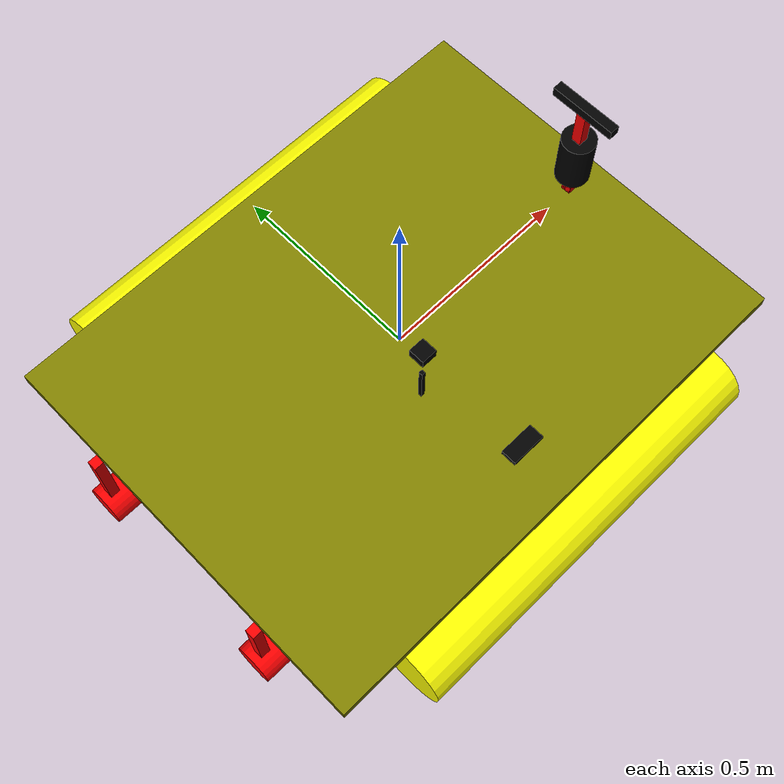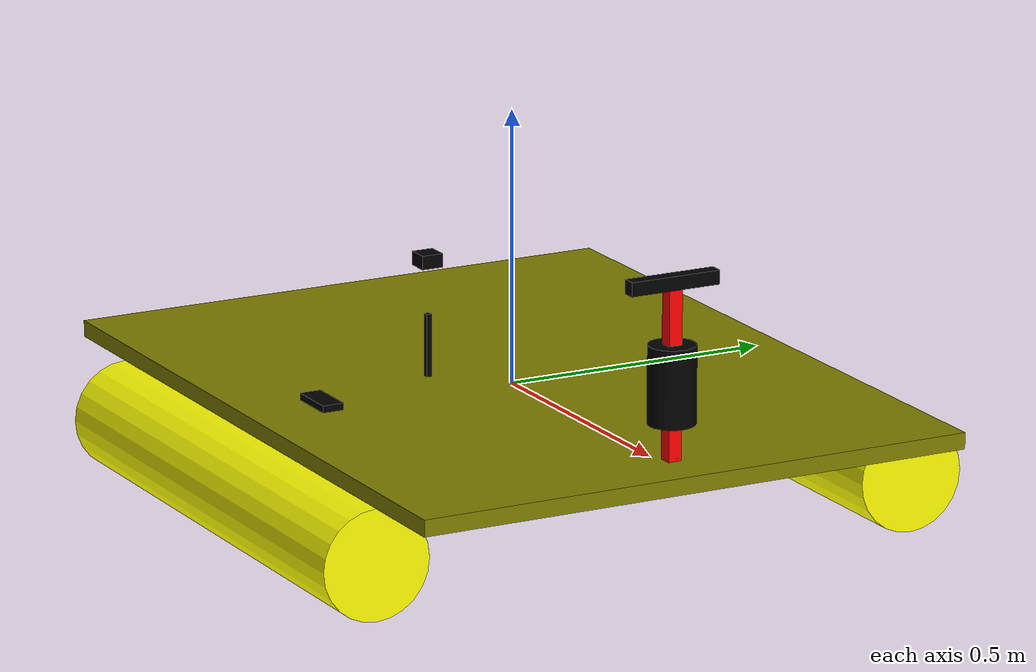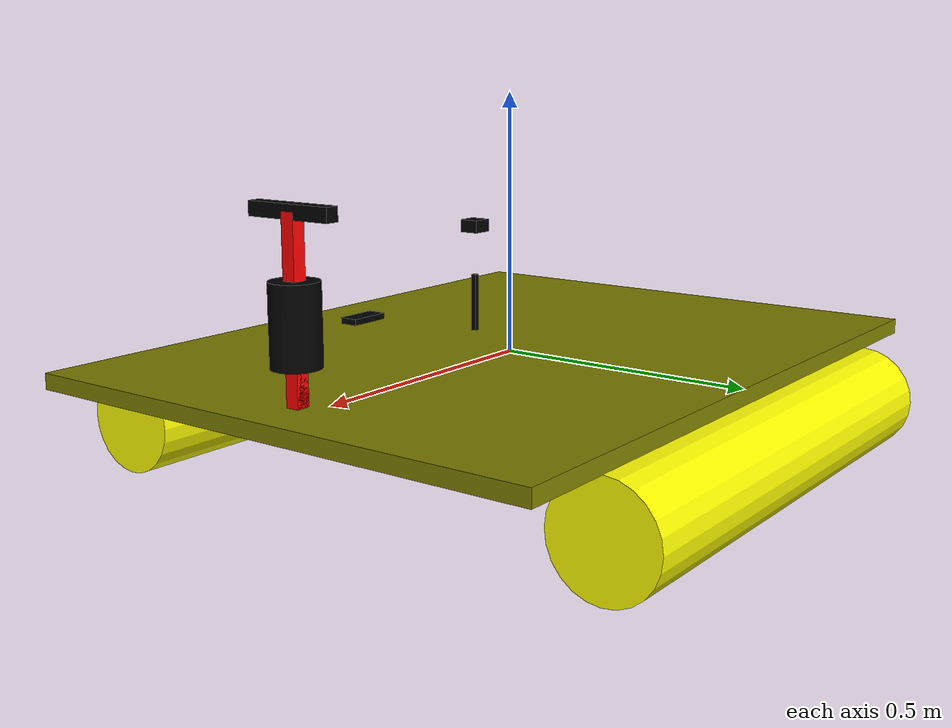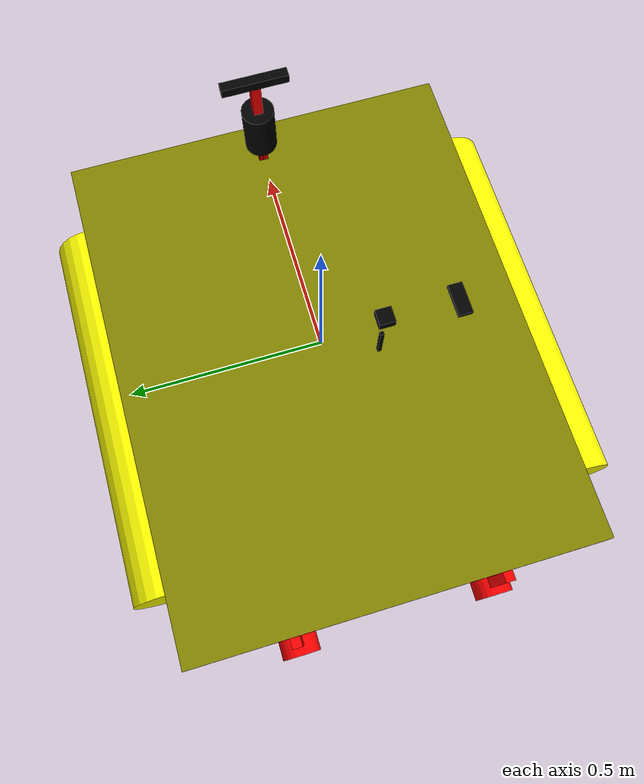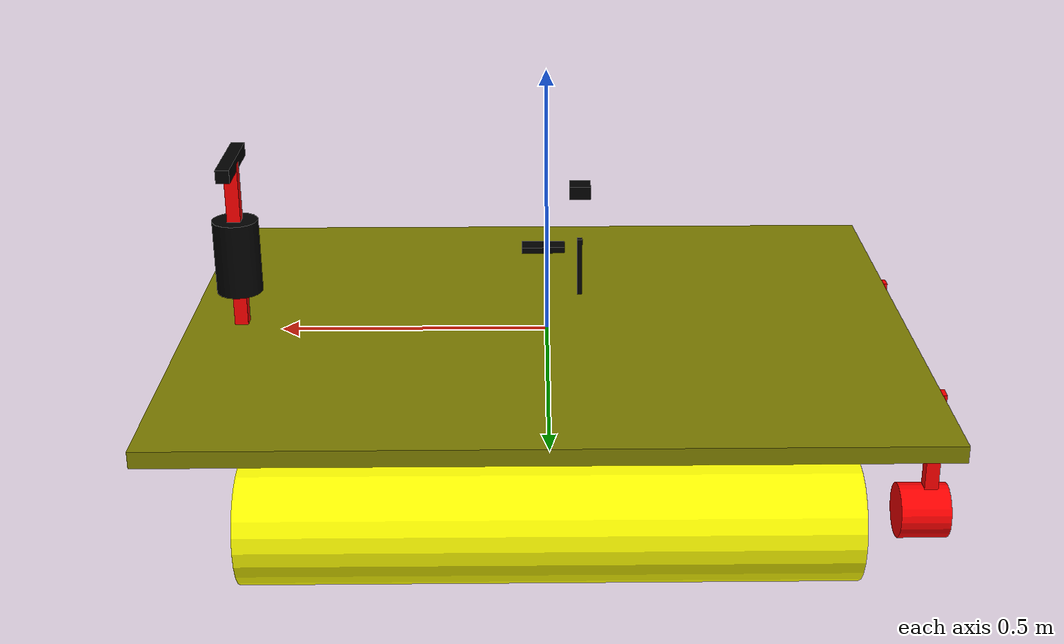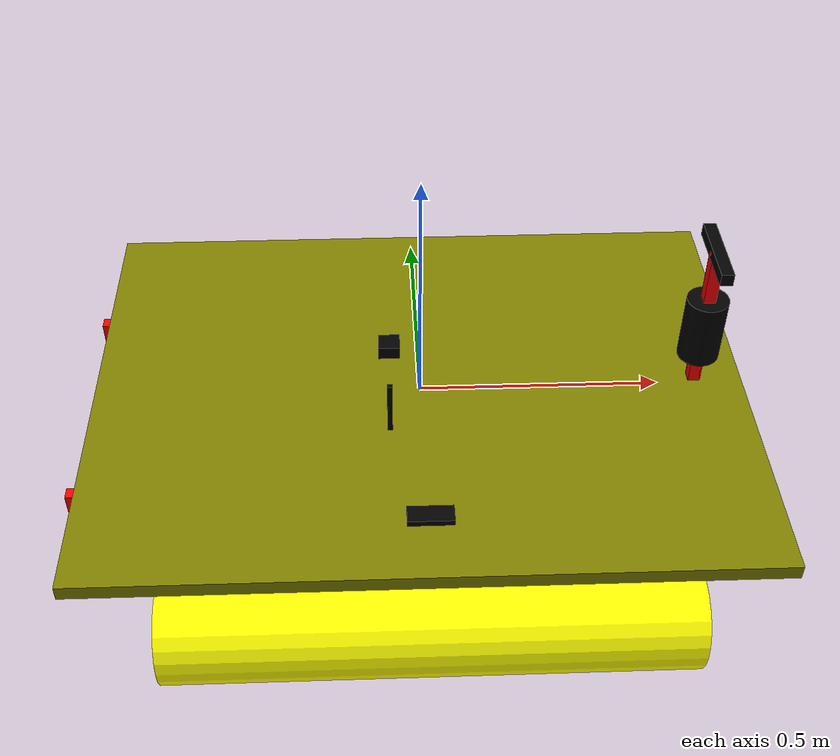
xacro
<?xml version="1.0"?>
<robot xmlns:xacro="http://www.ros.org/wiki/xacro" name="athena">

  <include filename="$(find sim_suite)/urdf/inertia.xacro" />

  <xacro:property name="deck_width" value="1.05" />
  <xacro:property name="deck_length" value="1.35" />
  <xacro:property name="deck_height" value=".03" />
  <xacro:property name="hull_radius" value=".1" />
  <xacro:property name="hull_length" value="1.0" />

  <xacro:property name="camera_stand_height" value=".33" />
  <xacro:property name="lidar_stand_height" value=".15" />

  <xacro:property name="base_to_imu_x" value=".005" />
  <xacro:property name="base_to_imu_y" value="-.38" />

  <xacro:property name="base_to_gps_x" value="-.065" />
  <xacro:property name="base_to_gps_y" value="-.135" />
  <xacro:property name="gps_stand_height" value=".2" />

  <xacro:property name="left_motor_height" value=".25" />
  <xacro:property name="right_motor_height" value=".25" />
  <xacro:property name="motor_depth" value=".05" />
  <xacro:property name="motor_radius" value=".05" />
  <xacro:macro name="solid_box_inertia" params="m h d w">

    <inertia ixx="${(m*(h*h+d*d))/12}" ixy="0" ixz="0"
      iyy="${(m*(w*w+d*d))/12}" iyz="0"
      izz="${(m*(w*w+h*h))/12}"
    />
  </xacro:macro>
  <xacro:macro name="solid_sphere_inertia" params="m r">
    <inertia ixx="${(2*r*r*m)/5}" ixy="0" ixz="0"
      iyy="${(2*r*r*m)/5}" iyz="0"
      izz="${(2*r*r*m)/5}"
    />
  </xacro:macro>

  <xacro:macro name="hollow_sphere_inertia" params="m r">
    <inertia ixx="${(2*r*r*m)/3}" ixy="0" ixz="0"
      iyy="${(2*r*r*m)/3}" iyz="0"
      izz="${(2*r*r*m)/3}"
    />
  </xacro:macro>

  <xacro:macro name="ellipsoid_semi_axes_inertia" params="a b c m r">
    <inertia ixx="${(m*(b*b+c*c))/5}" ixy="0" ixz="0"
      iyy="${(m*(a*a+c*c))/5}" iyz="0"
      izz="${(m*(a*a+b*b))/5}"
    />
  </xacro:macro>

  <xacro:macro name="right_circular_cone_inertia" params="m r h">
    <inertia ixx="${((3*m*(h*h))/5)+((3*m*(r*r))/20)}" ixy="0" ixz="0"
      iyy="${((3*m*(h*h))/5)+((3*m*(r*r))/20)}" iyz="0"
      izz="${(3*m*(r*r))/10}"
    />
  </xacro:macro>

  <!-- Solid cuboid of width w, height h, depth d, and mass m -->
  <!-- yes, axis in solid_cuboid_inertia are changed, w relates to X axis, d to Z axis, and h to Y
  axis -->
  <xacro:macro name="solid_cuboid_inertia" params="m h d w">
    <inertia ixx="${(m*(h*h+d*d))/12}" ixy="0" ixz="0"
      iyy="${(m*(w*w+d*d))/12}" iyz="0"
      izz="${(m*(w*w+h*h))/12}"
    />
  </xacro:macro>

  <!-- Solid cylinder of radius r, height h and mass m -->
  <xacro:macro name="solid_cylinder_inertia" params="m r h">
    <inertia ixx="${m*(3*r*r+h*h)/12}" ixy="0" ixz="0"
      iyy="${m*(3*r*r+h*h)/12}" iyz="0"
      izz="${m*r*r/2}"
    />
  </xacro:macro>

  <!-- Thick-walled cylindrical tube with open ends, of inner radius r1, outer radius r2, length h
  and mass m -->
  <xacro:macro name="thick_walled_cylinder_inertia" params="m r1 r2 h">
    <inertia ixx="${m*((3*(r1*r1+r2*r2))+(h*h))/12}" ixy="0" ixz="0"
      iyy="${m*((3*(r1*r1+r2*r2))+(h*h))/12}" iyz="0"
      izz="${m*(r1*r1+r2*r2)/2}"
    />
  </xacro:macro>

  <xacro:macro name="propeller" params="side">
    <link name='${side}_propeller_link'>
      <inertial>
        <mass value="0.5" />
        <inertia ixx="0.008545" ixy="0" ixz="0"
          iyy="0.008545" iyz="0"
          izz="0.0144"
        />
      </inertial>
      <self_collide>0</self_collide>
      <enable_wind>0</enable_wind>
      <kinematic>0</kinematic>
      <visual name='${side}_propeller_link_visual'>
        <geometry>
          <cylinder radius="${motor_radius}" length="0.09" />
        </geometry>
        <material name="red">
          <color rgba="1 0 0 1" />
        </material>
      </visual>
      <collision name='${side}_propeller_link_collision'>
        <laser_retro>0</laser_retro>
        <max_contacts>10</max_contacts>
        <geometry>
          <cylinder radius="${motor_radius}" length="0.09" />
        </geometry>
        <surface>
          <friction>
            <ode>
              <mu>1</mu>
              <mu2>1</mu2>
              <fdir1>0 0 0</fdir1>
              <slip1>0</slip1>
              <slip2>0</slip2>
            </ode>
            <torsional>
              <coefficient>1</coefficient>
              <patch_radius>0</patch_radius>
              <surface_radius>0</surface_radius>
              <use_patch_radius>1</use_patch_radius>
              <ode>
                <slip>0</slip>
              </ode>
            </torsional>
          </friction>
          <bounce>
            <restitution_coefficient>0</restitution_coefficient>
            <threshold>1e+06</threshold>
          </bounce>
          <contact>
            <collide_without_contact>0</collide_without_contact>
            <collide_without_contact_bitmask>1</collide_without_contact_bitmask>
            <collide_bitmask>1</collide_bitmask>
            <ode>
              <soft_cfm>0</soft_cfm>
              <soft_erp>0.2</soft_erp>
              <kp>1e+13</kp>
              <kd>1</kd>
              <max_vel>0.01</max_vel>
              <min_depth>0</min_depth>
            </ode>
            <bullet>
              <split_impulse>1</split_impulse>
              <split_impulse_penetration_threshold>-0.01</split_impulse_penetration_threshold>
              <soft_cfm>0</soft_cfm>
              <soft_erp>0.2</soft_erp>
              <kp>1e+13</kp>
              <kd>1</kd>
            </bullet>
          </contact>
        </surface>
      </collision>
    </link>
  </xacro:macro>

  <link name='dummy_base_link' />
  <joint name='dummy_base_joint' type='fixed'>
    <parent link='dummy_base_link' />
    <child link='base_link' />
    <origin xyz='0 0 0' rpy='0 0 0' />
  </joint>

  <link name="base_link">
    <visual>
      <geometry>
        <box size="${deck_length} ${deck_width} ${deck_height}" />
      </geometry>
      <material name="brown">
        <color rgba="0.5 0.5 0 1" />
      </material>
    </visual>
    <collision>
      <geometry>
        <box size="${deck_length} ${deck_width} ${deck_height}" />
      </geometry>
    </collision>
    <inertial>
      <mass value=".10" />
      <xacro:solid_box_inertia m=".10" d="${deck_length}" w="${deck_width}" h="${deck_height}" />
    </inertial>
  </link>

  <link name="right_hull">
    <visual>
      <geometry>
        <cylinder length="${hull_length}" radius="${hull_radius}" />
      </geometry>
      <material name="yellow">
        <color rgba="1 1 0 1" />
      </material>
    </visual>
    <collision>
      <geometry>
        <cylinder length="${hull_length}" radius="${hull_radius}" />
      </geometry>
    </collision>
    <intertial>
      <mass value=".5" />
      <xacro:solid_cylinder_inertia m=".5" r="${hull_radius}" h="${hull_length}" />
    </intertial>
  </link>
  <joint name="right_hull_joint" type="fixed">
    <parent link="base_link" />
    <child link="right_hull" />
    <origin xyz="0 ${deck_width/2} ${-(deck_height/2 + hull_radius)}" rpy="0 1.57 0" />
  </joint>

  <link name="left_hull">
    <visual>
      <geometry>
        <cylinder length="1.0" radius="0.1" />
      </geometry>
      <material name="yellow">
        <color rgba="1 1 0 1" />
      </material>
    </visual>
    <collision>
      <geometry>
        <cylinder length="${hull_length}" radius="${hull_radius}" />
      </geometry>
    </collision>
    <intertial>
      <mass value=".5" />
      <xacro:solid_cylinder_inertia m=".5" r="${hull_radius}" h="${hull_length}" />
    </intertial>
  </link>
  <joint name="left_hull_joint" type="fixed">
    <parent link="base_link" />
    <child link="left_hull" />
    <origin xyz="0 ${-deck_width/2} ${-(deck_height/2 + hull_radius)}" rpy="0 1.57 0" />
  </joint>

  <link name="camera_stand">
    <visual>
      <geometry>
        <box size=".025 .025 ${camera_stand_height}" />
      </geometry>
      <material name="red">
        <color rgba="1 0 0 1" />
      </material>
    </visual>
    <inertial>
      <mass value=".05" />
      <xacro:solid_box_inertia m=".05" d=".025" w=".025" h="${camera_stand_height}" />
    </inertial>
  </link>
  <joint name="camera_stand_joint" type="fixed">
    <parent link="base_link" />
    <child link="camera_stand" />
    <origin xyz="${(deck_length / 2) - .1} 0 ${camera_stand_height/2}" />
  </joint>
  <link name="camera_link">
    <visual>
      <geometry>
        <box size=".025 .17 .025" />
      </geometry>
      <material name="black">
        <color rgba="0 0 0 1" />
      </material>
    </visual>
    <inertial>
      <mass value=".05" />
      <xacro:solid_box_inertia m=".05" d=".025" w=".05" h=".025" />
    </inertial>
  </link>

  <gazebo reference="camera_link">
    <sensor type="camera" name="camera1">
      <horizontal_fov>1.047</horizontal_fov>
      <image>
        <width>640</width>
        <height>480</height>
      </image>
      <clip>
        <near>0.1</near>
        <far>100</far>
      </clip>
      <always_on>1</always_on>
      <update_rate>30</update_rate>
      <plugin name='camera_controller' filename='libgazebo_ros_camera.so'>
        <alwaysOn>1</alwaysOn>
        <updateRate>0.0</updateRate>
        <cameraName>zed2i</cameraName>
        <imageTopicName>/zed2i/zed_node/rgb/image_rect_color</imageTopicName>
        <cameraInfoTopicName>/zed_node/camera_info</cameraInfoTopicName>
        <frameName>camera_link</frameName>
        <hackBaseline>0.07</hackBaseline>
        <distortionK1>0.0</distortionK1>
        <distortionK2>0.0</distortionK2>
        <distortionK3>0.0</distortionK3>
        <distortionT1>0.0</distortionT1>
        <distortionT2>0.0</distortionT2>
      </plugin>
    </sensor>
  </gazebo>

  <joint name="camera_joint" type="fixed">
    <parent link="camera_stand" />
    <child link="camera_link" />
    <origin xyz="0 0 ${camera_stand_height/2}" />
  </joint>

  <link name="lidar_stand">
    <visual>
      <geometry>
        <box size=".025 .025 ${lidar_stand_height}" />
      </geometry>
      <material name="red">
        <color rgba="1 0 0 1" />
      </material>
    </visual>
    <inertial>
      <mass value=".25" />
      <xacro:solid_box_inertia m=".25" d=".025" w=".025" h="${lidar_stand_height}" />
    </inertial>
  </link>

  <joint name="lidar_stand_joint" type="fixed">
    <parent link="base_link" />
    <child link="lidar_stand" />
    <origin xyz="${(deck_length / 2) - .1} 0 ${lidar_stand_height/2}" />
  </joint>

  <link name='velodyne_lidar'>
    <visual>
      <geometry>
        <cylinder radius='.0425' length='.14'/>
      </geometry>
      <material name="black">
        <color rgba="0 0 0 1" />
      </material>
    </visual>
  </link>

  <joint name="lidar_mount_joint" type="fixed">
    <parent link="lidar_stand"/>
    <child link="velodyne_lidar"/>
    <origin xyz="0 0 ${lidar_stand_height/2}" />
  </joint>

  <link name='imu_link'>
    <inertial>
      <mass value='0.015' />
      <inertia ixx='1e-05' ixy='0' ixz='0'
        iyy='1e-05' iyz='0'
        izz='1e-05'
      />
    </inertial>
    <visual>
      <geometry>
        <box size=".09 .04 .025" />
      </geometry>
      <material name="black">
        <color rgba="0 0 0 1" />
      </material>
    </visual>
    <self_collide>0</self_collide>
    <enable_wind>0</enable_wind>
    <kinematic>0</kinematic>
  </link>

  <joint name='imu_joint' type='fixed'>
    <parent link='base_link' />
    <child link='imu_link' />
    <origin xyz="${base_to_imu_x} ${base_to_imu_y} ${deck_height/2}" />

    <axis>
      <xyz>1 0 0</xyz>
      <use_parent_model_frame>1</use_parent_model_frame>
      <limit>
        <lower>0</lower>
        <upper>0</upper>
        <effort>0</effort>
        <velocity>0</velocity>
      </limit>
      <dynamics>
        <spring_reference>0</spring_reference>
        <spring_stiffness>0</spring_stiffness>
        <damping>0.7</damping>
        <friction>0</friction>
      </dynamics>
    </axis>
    <physics>
      <ode>
        <limit>
          <cfm>0</cfm>
          <erp>0.2</erp>
        </limit>
        <suspension>
          <cfm>0</cfm>
          <erp>0.2</erp>
        </suspension>
      </ode>
    </physics>
  </joint>

  <gazebo reference="imu_link">
    <sensor name='imu_sensor' type='imu'>
      <pose frame=''>0 0 0 -3.14159 -0 0</pose>
      <always_on>1</always_on>
      <update_rate>1000</update_rate>
      <imu />
    </sensor>
  </gazebo>

  <link name='gps_stand_link'>
    <visual>
      <geometry>
        <box size=".01 .01 ${gps_stand_height}" />
      </geometry>
      <material name="black">
        <color rgba="0 0 0 1" />
      </material>
    </visual>
    <self_collide>0</self_collide>
    <enable_wind>0</enable_wind>
    <kinematic>0</kinematic>
  </link>

  <joint name="gps_stand_joint" type="fixed">
    <parent link="base_link" />
    <child link="gps_stand_link" />
    <origin xyz="${base_to_gps_x} ${base_to_gps_y} ${deck_height}" />
  </joint>

  <link name='gps_link'>
    <inertial>
      <mass value='0.015' />
      <inertia ixx='1e-05' ixy='0' ixz='0'
        iyy='1e-05' iyz='0'
        izz='1e-05'
      />
    </inertial>
    <visual>
      <geometry>
        <box size=".04 .04 .025" />
      </geometry>
      <material name="black">
        <color rgba="0 0 0 1" />
      </material>
    </visual>
    <self_collide>0</self_collide>
    <enable_wind>0</enable_wind>
    <kinematic>0</kinematic>
  </link>

  <joint name="gps_mount_joint" type="fixed">
    <parent link="gps_stand_link" />
    <child link="gps_link" />
    <origin xyz="0 0 ${gps_stand_height}" />
  </joint>

  <link name="left_motor_mount">
    <visual>
      <geometry>
        <box size=".025 .025 ${left_motor_height}" />
      </geometry>
      <material name="red">
        <color rgba="1 0 0 1" />
      </material>
    </visual>
    <inertial>
      <mass value=".1" />
      <xacro:solid_box_inertia m=".1" d=".025" w=".025" h="${left_motor_height}" />
    </inertial>
  </link>
  <joint name="left_motor_mount_joint" type="fixed">
    <parent link="base_link" />
    <child link="left_motor_mount" />
    <origin xyz="${-deck_length/2-.0125} ${-deck_width/4} ${-(deck_height + left_motor_height)/2}" />

  </joint>
  <link name="right_motor_mount">
    <visual>
      <geometry>
        <box size=".025 .025 ${right_motor_height}" />
      </geometry>
      <material name="red">
        <color rgba="1 0 0 1" />
      </material>
    </visual>
    <inertial>
      <mass value=".1" />
      <xacro:solid_box_inertia m=".1" d=".025" w=".025" h="${right_motor_height}" />
    </inertial>
  </link>
  <joint name="right_motor_mount_joint" type="fixed">
    <parent link="base_link" />
    <child link="right_motor_mount" />
    <origin xyz="${-deck_length/2-.0125} ${deck_width/4} ${-(deck_height + right_motor_height)/2}" />
  </joint>

  <link name='left_propeller_link'>
    <inertial>
      <origin rpy='0 1.57 0' />
      <mass value="0.5" />
      <inertia ixx="0.008545" ixy="0" ixz="0"
        iyy="0.008545" iyz="0"
        izz="0.0144"
      />
    </inertial>
    <self_collide>0</self_collide>
    <enable_wind>0</enable_wind>
    <kinematic>0</kinematic>
    <visual name='left_propeller_link_visual'>
      <origin rpy='0 1.57 0' />
      <geometry>
        <cylinder radius="${motor_radius}" length="0.09" />
      </geometry>
      <material name="red">
        <color rgba="1 0 0 1" />
      </material>
    </visual>
    <collision name='left_propeller_link_collision'>
      <origin rpy='0 1.57 0'/>
      <laser_retro>0</laser_retro>
      <max_contacts>10</max_contacts>
      <geometry>
        <cylinder radius="${motor_radius}" length="0.09" />
      </geometry>
      <surface>
        <friction>
          <ode>
            <mu>1</mu>
            <mu2>1</mu2>
            <fdir1>0 0 0</fdir1>
            <slip1>0</slip1>
            <slip2>0</slip2>
          </ode>
          <torsional>
            <coefficient>1</coefficient>
            <patch_radius>0</patch_radius>
            <surface_radius>0</surface_radius>
            <use_patch_radius>1</use_patch_radius>
            <ode>
              <slip>0</slip>
            </ode>
          </torsional>
        </friction>
        <bounce>
          <restitution_coefficient>0</restitution_coefficient>
          <threshold>1e+06</threshold>
        </bounce>
        <contact>
          <collide_without_contact>0</collide_without_contact>
          <collide_without_contact_bitmask>1</collide_without_contact_bitmask>
          <collide_bitmask>1</collide_bitmask>
          <ode>
            <soft_cfm>0</soft_cfm>
            <soft_erp>0.2</soft_erp>
            <kp>1e+13</kp>
            <kd>1</kd>
            <max_vel>0.01</max_vel>
            <min_depth>0</min_depth>
          </ode>
          <bullet>
            <split_impulse>1</split_impulse>
            <split_impulse_penetration_threshold>-0.01</split_impulse_penetration_threshold>
            <soft_cfm>0</soft_cfm>
            <soft_erp>0.2</soft_erp>
            <kp>1e+13</kp>
            <kd>1</kd>
          </bullet>
        </contact>
      </surface>
    </collision>
  </link>
  <gazebo reference="left_propeller_link">
    <pose relative_to='left_motor_joint'>0 0 0 0 -0 0</pose>
  </gazebo>
  <joint name="left_motor_joint" type="revolute">
    <parent link="base_link" />
    <child link="left_propeller_link" />
    <origin xyz="${-deck_length/2}  ${deck_width/4} ${-left_motor_height}"/>
    <limit lower="-1e+16" upper="1e+16" effort="-1" velocity="-1" />
    <axis xyz="1 0 0" />
    <physics>
      <ode>
        <limit>
          <cfm>0</cfm>
          <erp>0.2</erp>
        </limit>
        <suspension>
          <cfm>0</cfm>
          <erp>0.2</erp>
        </suspension>
      </ode>
    </physics>
  </joint>
  <gazebo reference="left_motor_joint">
    <use_parent_model_frame>1</use_parent_model_frame>
  </gazebo>
  <link name='right_propeller_link'>

    <inertial>
      <origin  xyz='0 0 0'  rpy='0 1.57 0'/>
      <mass value="0.5" />
      <inertia ixx="0.008545" ixy="0" ixz="0"
        iyy="0.008545" iyz="0"
        izz="0.0144"
      />
    </inertial>
    <self_collide>0</self_collide>
    <enable_wind>0</enable_wind>
    <kinematic>0</kinematic>
    <visual name='right_propeller_link_visual'>
      <geometry>
        <cylinder radius="${motor_radius}" length="0.09" />
      </geometry>
      <origin  xyz='0 0 0' rpy='0 1.57 0'/>
      <material name="red">
        <color rgba="1 0 0 1" />
      </material>
    </visual>
    <collision name='right_propeller_link_collision'>
      <origin xyz='0 0 0' rpy='0 1.57 0'/>
      <laser_retro>0</laser_retro>
      <max_contacts>10</max_contacts>
      <geometry>
        <cylinder radius="${motor_radius}" length="0.09" />
      </geometry>
      <surface>
        <friction>
          <ode>
            <mu>1</mu>
            <mu2>1</mu2>
            <fdir1>0 0 0</fdir1>
            <slip1>0</slip1>
            <slip2>0</slip2>
          </ode>
          <torsional>
            <coefficient>1</coefficient>
            <patch_radius>0</patch_radius>
            <surface_radius>0</surface_radius>
            <use_patch_radius>1</use_patch_radius>
            <ode>
              <slip>0</slip>
            </ode>
          </torsional>
        </friction>
        <bounce>
          <restitution_coefficient>0</restitution_coefficient>
          <threshold>1e+06</threshold>
        </bounce>
        <contact>
          <collide_without_contact>0</collide_without_contact>
          <collide_without_contact_bitmask>1</collide_without_contact_bitmask>
          <collide_bitmask>1</collide_bitmask>
          <ode>
            <soft_cfm>0</soft_cfm>
            <soft_erp>0.2</soft_erp>
            <kp>1e+13</kp>
            <kd>1</kd>
            <max_vel>0.01</max_vel>
            <min_depth>0</min_depth>
          </ode>
          <bullet>
            <split_impulse>1</split_impulse>
            <split_impulse_penetration_threshold>-0.01</split_impulse_penetration_threshold>
            <soft_cfm>0</soft_cfm>
            <soft_erp>0.2</soft_erp>
            <kp>1e+13</kp>
            <kd>1</kd>
          </bullet>
        </contact>
      </surface>
    </collision>
  </link>
  <joint name="right_motor_joint" type="revolute">
    <parent link="base_link" />
    <child link="right_propeller_link" />
    <origin xyz="${-deck_length/2}  ${-deck_width/4} ${-left_motor_height}"/>
    <limit lower="-1e+16" upper="1e+16" effort="-1" velocity="-1" />
    <physics>
      <ode>
        <limit>
          <cfm>0</cfm>
          <erp>0.2</erp>
        </limit>
        <suspension>
          <cfm>0</cfm>
          <erp>0.2</erp>
        </suspension>
      </ode>
    </physics>
  </joint>
  <gazebo reference="right_motor_joint">
    <axis>
      <xyz>1 0 0</xyz>
      <use_parent_model_frame>1</use_parent_model_frame>

    </axis>
  </gazebo>

  <gazebo>
    <plugin name='ArduCopter_Plugin' filename='libArduPilotPlugin.so'>
      <fdm_addr>127.0.0.1</fdm_addr>
      <fdm_port_in>9002</fdm_port_in>
      <fdm_port_out>9003</fdm_port_out>
      <modelXYZToAirplaneXForwardZDown>0 0 0 3.141593 0 0</modelXYZToAirplaneXForwardZDown>
      <gazeboXYZToNED>0 0 0 3.141593 0 0</gazeboXYZToNED>
      <imuName>dummy_base_link::imu_sensor</imuName>
      <connectionTimeoutMaxCount>5</connectionTimeoutMaxCount>
      <control channel='0'>
        <type>VELOCITY</type>
        <offset>-0.5</offset>
        <p_gain>1</p_gain>
        <i_gain>0</i_gain>
        <d_gain>0</d_gain>
        <i_max>0</i_max>
        <i_min>0</i_min>
        <cmd_max>10</cmd_max>
        <cmd_min>-10</cmd_min>
        <jointName>left_motor_joint</jointName>
        <multiplier>-100</multiplier>
      </control>
      <control channel='2'>
        <type>VELOCITY</type>
        <offset>-0.5</offset>
        <p_gain>1</p_gain>
        <i_gain>0</i_gain>
        <d_gain>0</d_gain>
        <i_max>0</i_max>
        <i_min>0</i_min>
        <cmd_max>10</cmd_max>
        <cmd_min>-10</cmd_min>
        <jointName>right_motor_joint</jointName>
        <multiplier>-100</multiplier>
      </control>
    </plugin>
    <plugin name='rotor_1_blade_1' filename='libLiftDragPlugin.so'>
      <a0>2</a0>
      <alpha_stall>4</alpha_stall>
      <cla>10.2500</cla>
      <cda>0.10</cda>
      <cma>0.00</cma>
      <cla_stall>-0.025</cla_stall>
      <cda_stall>0.0</cda_stall>
      <cma_stall>0.0</cma_stall>
      <area>0.002</area>
      <air_density>997</air_density>
      <cp>0.084 0 0</cp>
      <forward>0 1 0</forward>
      <upward>0 0 1</upward>
      <link_name>right_propeller_link</link_name>
    </plugin>
    <plugin name='rotor_1_blade_2' filename='libLiftDragPlugin.so'>
      <a0>2</a0>
      <alpha_stall>4</alpha_stall>
      <cla>10.2500</cla>
      <cda>0.10</cda>
      <cma>0.00</cma>
      <cla_stall>-0.025</cla_stall>
      <cda_stall>0.0</cda_stall>
      <cma_stall>0.0</cma_stall>
      <area>0.002</area>
      <air_density>997</air_density>
      <cp>-0.084 0 0</cp>
      <forward>0 -1 0</forward>
      <upward>0 0 1</upward>
      <link_name>left_propeller_link</link_name>
    </plugin>
    <plugin name='usv_dynamics_wamv_dynamics_plugin' filename='libusv_gazebo_dynamics_plugin.so'>
      <bodyName>base_link</bodyName>
      <waterLevel>.25</waterLevel>
      <waterDensity>997.8</waterDensity>
      <xDotU>0.0</xDotU>
      <yDotV>0.0</yDotV>
      <nDotR>0.0</nDotR>
      <xU>51.3</xU>
      <xUU>72.4</xUU>
      <yV>40.0</yV>
      <yVV>0.0</yVV>
      <zW>500.0</zW>
      <kP>50.0</kP>
      <mQ>50.0</mQ>
      <nR>400.0</nR>
      <nRR>0.0</nRR>
      <hullRadius>${hull_radius}</hullRadius>
      <boatWidth>${deck_width + 2*hull_radius}</boatWidth>
      <boatLength>1</boatLength>
      <length_n>2</length_n>
      <wave_n> 3 </wave_n>
      <wave_amp0> 0</wave_amp0>
      <wave_amp1> 0</wave_amp1>
      <wave_amp2> 0</wave_amp2>
      <wave_period0> 12 </wave_period0>
      <wave_period1> 8 </wave_period1>
      <wave_period2> 5.33333 </wave_period2>
      <wave_direction0> 0.921061 -0.389418 </wave_direction0>
      <wave_direction1> 1 0 </wave_direction1>
      <wave_direction2> 0.921061 0.389418 </wave_direction2>
    </plugin>
  </gazebo>
</robot>
